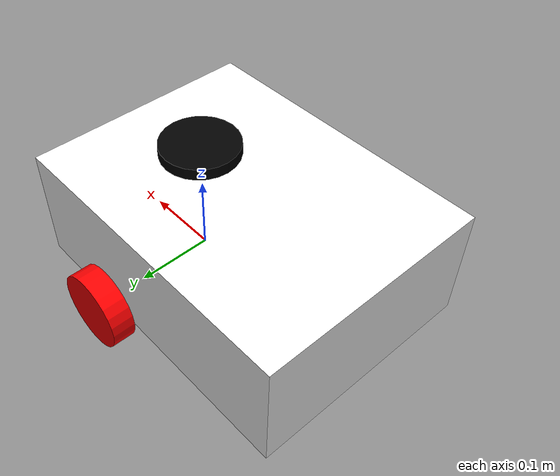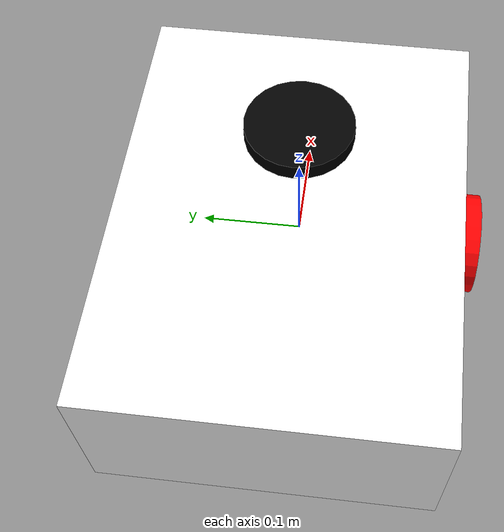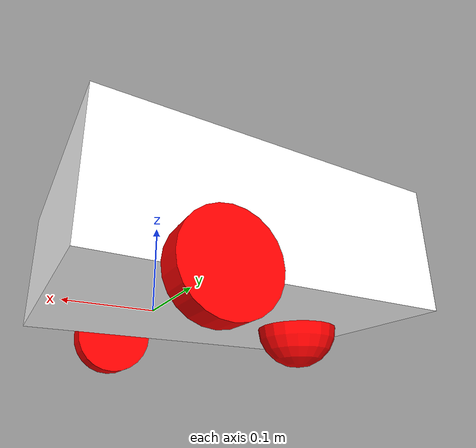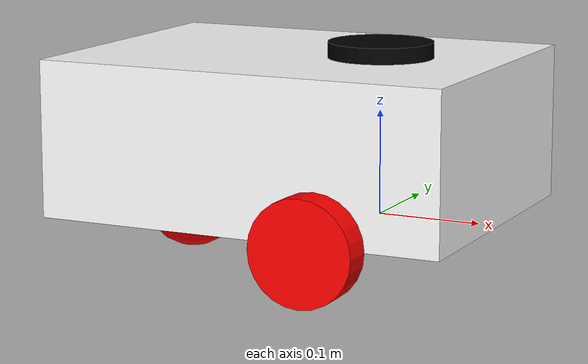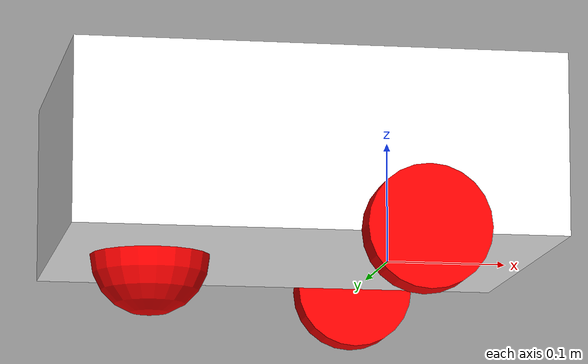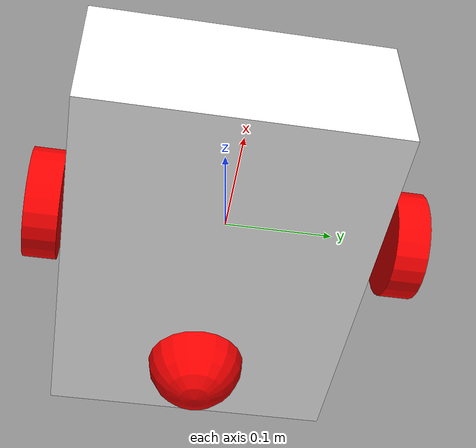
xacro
<?xml version="1.0"?>
<robot name="my_robot" xmlns:xacro="http://www.ros.org/wiki/xacro">

    <xacro:property name="chassis_length" value="0.4"/>
    <xacro:property name="chassis_width" value="0.3"/>
    <xacro:property name="chassis_height" value="0.15"/>

    <xacro:property name="wheel_radius" value="0.05"/>
    <xacro:property name="wheel_length" value="0.03"/>

    <xacro:property name="lidar_radius" value="0.05"/>
    <xacro:property name="lidar_length" value="0.03"/>

    <xacro:include filename="inertial_macros.xacro"/>
    <xacro:include filename="materials.xacro"/>
    <xacro:include filename="gazebo.xacro"/>
    <xacro:include filename="gazebo_lidar.xacro"/>
    <xacro:include filename="ros2_control.xacro"/>
    <xacro:include filename="links.xacro"/>
    <xacro:include filename="joints.xacro"/>

</robot>

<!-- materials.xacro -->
<robot xmlns:xacro="http://www.ros.org/wiki/xacro">

    <material name="white">
        <color rgba="1 1 1 1"/>
    </material>

    <material name="red">
        <color rgba="1 0 0 1"/>
    </material>

    <material name="black">
        <color rgba="0 0 0 1"/>
    </material>

</robot>

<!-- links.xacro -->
<robot xmlns:xacro="http://www.ros.org/wiki/xacro">

    <link name="base_link"/>

    <link name="chassis">
        <visual>
            <origin xyz="${chassis_length/2} 0 ${chassis_height/2}" rpy="0 0 0"/>
            <geometry>
                <box size="${chassis_length} ${chassis_width} ${chassis_height}"/>
            </geometry>
            <material name="white"/>
        </visual>
        <collision>
            <origin xyz="${chassis_length/2} 0 ${chassis_height/2}" rpy="0 0 0"/>
            <geometry>
                <box size="${chassis_length} ${chassis_width} ${chassis_height}"/>
            </geometry>
        </collision>
        <xacro:inertial_box mass="0.5" x="${chassis_length}" y="${chassis_width}" z="${chassis_height}">
            <origin xyz="${chassis_length/2} 0 ${chassis_height/2}" rpy="0 0 0"/>
        </xacro:inertial_box>
    </link>

    <xacro:macro name="wheel" params="name *origin">
        <link name="${name}">
            <visual>
                <xacro:insert_block name="origin"/>
                <geometry>
                    <cylinder radius="${wheel_radius}" length="${wheel_length}"/>
                </geometry>
                <material name="red"/>
            </visual>
            <collision>
                <xacro:insert_block name="origin"/>
                <geometry>
                    <sphere radius="${wheel_radius}"/>
                </geometry>
            </collision>
            <xacro:inertial_cylinder mass="0.01" radius="${wheel_radius}" length="${wheel_length}">
                <xacro:insert_block name="origin"/>
            </xacro:inertial_cylinder>
        </link>
    </xacro:macro>

    <xacro:wheel name="left_wheel">
        <origin xyz="0 0 0" rpy="0 0 0"/>
    </xacro:wheel>

    <xacro:wheel name="right_wheel">
        <origin xyz="0 0 0" rpy="0 0 0"/>
    </xacro:wheel>

    <link name="caster_wheel">
        <visual>
            <geometry>
                <sphere radius="${wheel_radius}"/>
            </geometry>
            <material name="red"/>
        </visual>
        <collision>
            <geometry>
                <sphere radius="${wheel_radius}"/>
            </geometry>
        </collision>
        <xacro:inertial_sphere mass="0.1" radius="${wheel_radius}">
            <origin xyz="0 0 0" rpy="0 0 0"/>
        </xacro:inertial_sphere>
    </link>

    <link name="lidar">
        <visual>
            <geometry>
                <cylinder radius="${lidar_radius}" length="${lidar_length}"/>
            </geometry>
            <origin xyz="0 0 0" rpy="0 0 0"/>
            <material name="black"/>
        </visual>
        <collision>
            <geometry>
                <cylinder radius="${lidar_radius}" length="${lidar_length}"/>
            </geometry>
            <origin xyz="0 0 ${lidar_length/2}" rpy="0 0 0"/>
        </collision>
        <xacro:inertial_cylinder mass="0.01" radius="${lidar_radius}" length="${lidar_length}">
            <origin xyz="0 0 ${lidar_length/2}" rpy="0 0 0"/>
        </xacro:inertial_cylinder>
    </link>

</robot>

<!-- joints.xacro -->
<robot xmlns:xacro="http://www.ros.org/wiki/xacro">

    <joint name="base_chassis_joint" type="fixed">
        <parent link="base_link"/>
        <child link="chassis"/>
        <origin xyz="-${chassis_length*7/10} 0 0"/>
    </joint>

    <joint name="left_wheel_base_joint" type="continuous">
        <parent link="base_link"/>
        <child link="left_wheel"/>
        <origin xyz="0 ${chassis_width/2 + wheel_length/2} 0" rpy="-${pi/2} 0 0"/>
        <axis xyz="0 0 1"/>
    </joint>

    <joint name="right_wheel_base_joint" type="continuous">
        <parent link="base_link"/>
        <child link="right_wheel"/>
        <origin xyz="0 -${chassis_width/2 + wheel_length/2} 0" rpy="-${pi/2} 0 0"/>
        <axis xyz="0 0 1"/>
    </joint>

    <joint name="caster_wheel_chassis_joint" type="fixed">
        <parent link="chassis"/>
        <child link="caster_wheel"/>
        <origin xyz="${chassis_length*1/5} 0 0" rpy="0 0 0"/>
    </joint>

    <joint name="lidar_chassis_joint" type="fixed">
        <parent link="chassis"/>
        <child link="lidar"/>
        <origin xyz="${chassis_length*7/10} 0 ${chassis_height}" rpy="0 0 0"/>
    </joint>

</robot>
